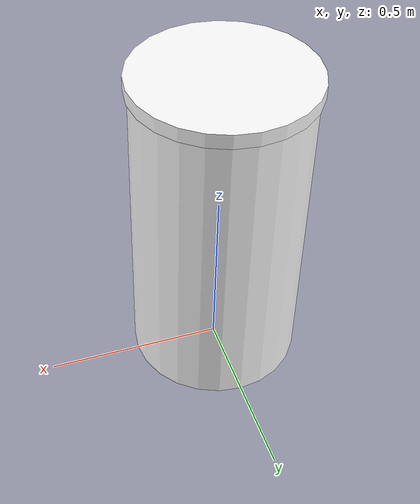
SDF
<?xml version="1.0"?>
<sdf version="1.10">
  <model name="barrel">
    <static>true</static>
      <link name="body">
        <collision name="drum_col"><pose>0 0 0.44 0 0 0</pose>
          <geometry><cylinder><radius>0.24</radius><length>0.88</length></cylinder>
          </geometry></collision>
        <visual name="drum_vis"><pose>0 0 0.44 0 0 0</pose>
          <geometry><cylinder><radius>0.24</radius><length>0.88</length></cylinder></geometry>
          <material>
          <diffuse>1 1 1 1</diffuse>
          <specular>0.15 0.15 0.15 1</specular>
          <pbr><metal>
            <albedo_map>model://slam_assets/materials/textures/barrel_skin.png</albedo_map>
            <roughness>0.85</roughness><metalness>0.0</metalness>
          </metal></pbr>
        </material>
        </visual>
        <collision name="lid_col"><pose>0 0 0.90 0 0 0</pose>
          <geometry><cylinder><radius>0.25</radius><length>0.04</length></cylinder>
          </geometry></collision>
        <visual name="lid_vis"><pose>0 0 0.90 0 0 0</pose>
          <geometry><cylinder><radius>0.25</radius><length>0.04</length></cylinder></geometry>
          <material>
          <diffuse>1 1 1 1</diffuse>
          <specular>0.15 0.15 0.15 1</specular>
          <pbr><metal>
            <albedo_map>model://slam_assets/materials/textures/metal_brushed.png</albedo_map>
            <roughness>0.85</roughness><metalness>0.0</metalness>
          </metal></pbr>
        </material>
        </visual>
      </link>
  </model>
</sdf>
